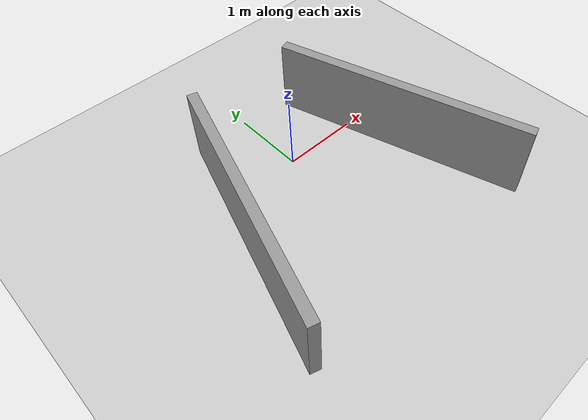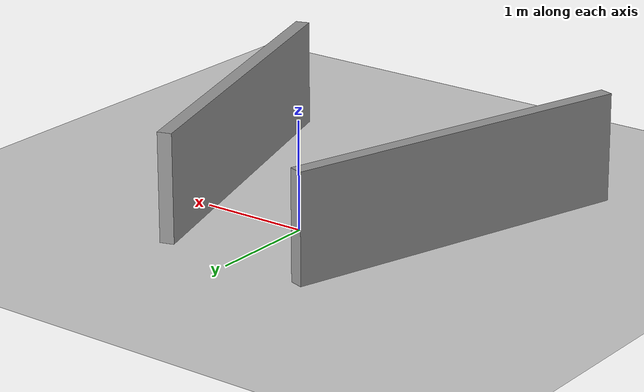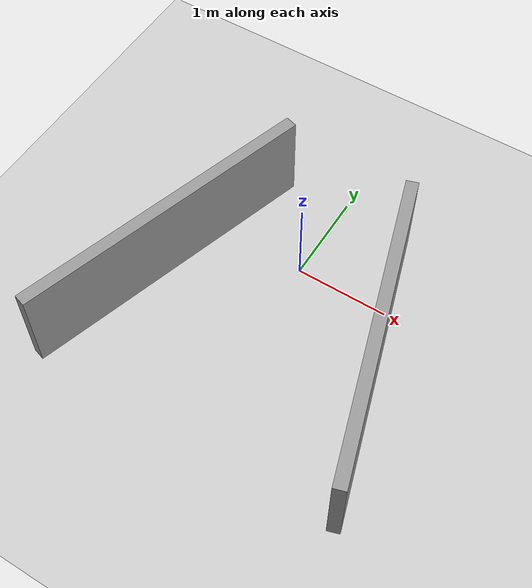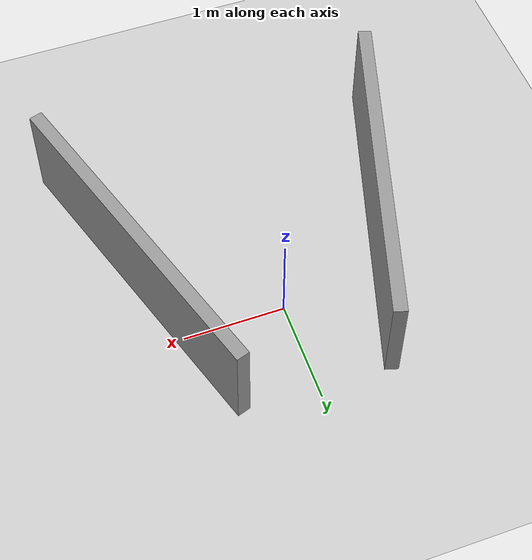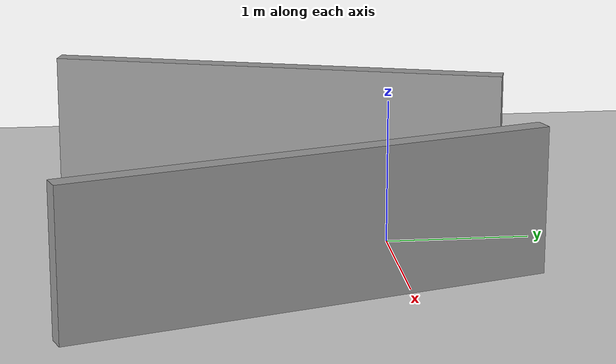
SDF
<sdf version="1.7">
 <world name="default">
  <light name="sun" type="directional">
   <cast_shadows>0</cast_shadows>
   <pose>0 0 10 0 -0 0</pose>
   <diffuse>0.8 0.8 0.8 1</diffuse>
   <specular>0.2 0.2 0.2 1</specular>
   <attenuation>
    <range>1000</range>
    <constant>0.9</constant>
    <linear>0.01</linear>
    <quadratic>0.001</quadratic>
   </attenuation>
   <direction>-0.5 0.1 -0.9</direction>
   <spot><inner_angle>0</inner_angle><outer_angle>0</outer_angle><falloff>0</falloff></spot>
  </light>
  <model name="ground_plane">
   <static>1</static>
   <link name="link">
    <collision name="collision">
     <geometry><plane><normal>0 0 1</normal><size>100 100</size></plane></geometry>
     <surface><friction><ode><mu>100</mu><mu2>50</mu2></ode></friction></surface>
    </collision>
    <visual name="visual">
     <cast_shadows>0</cast_shadows>
     <geometry><plane><normal>0 0 1</normal><size>100 100</size></plane></geometry>
     <material>
      <script><uri>file://media/materials/scripts/gazebo.material</uri><name>Gazebo/Grey</name></script>
     </material>
    </visual>
   </link>
  </model>
  <physics type="ode">
   <real_time_update_rate>1000</real_time_update_rate>
   <max_step_size>0.001</max_step_size>
   <real_time_factor>1</real_time_factor>
   <ode>
    <solver>
     <type>quick</type>
     <iters>150</iters>
     <precon_iters>0</precon_iters>
     <sor>1.4</sor>
     <use_dynamic_moi_rescaling>1</use_dynamic_moi_rescaling>
    </solver>
    <constraints>
     <cfm>1e-05</cfm>
     <erp>0.2</erp>
     <contact_max_correcting_vel>2000</contact_max_correcting_vel>
     <contact_surface_layer>0.01</contact_surface_layer>
    </constraints>
   </ode>
  </physics>
  <gravity>0 0 -9.8</gravity>
  <magnetic_field>6e-06 2.3e-05 -4.2e-05</magnetic_field>
  <atmosphere type="adiabatic"/>
  <scene><ambient>0.4 0.4 0.4 1</ambient><background>0.7 0.7 0.7 1</background><shadows>0</shadows></scene>
  <audio><device>default</device></audio>
  <spherical_coordinates>
   <surface_model>EARTH_WGS84</surface_model>
   <latitude_deg>0</latitude_deg>
   <longitude_deg>0</longitude_deg>
   <elevation>0</elevation>
   <heading_deg>0</heading_deg>
  </spherical_coordinates>
  <model name="unit_box">
   <static>1</static>
   <pose>-1.19247 -0.641899 0.499712 -0.000174 -4e-06 -0.296799</pose>
   <link name="link">
    <inertial>
     <mass>1</mass>
     <inertia>
      <ixx>0.166667</ixx>
      <ixy>0</ixy>
      <ixz>0</ixz>
      <iyy>0.166667</iyy>
      <iyz>0</iyz>
      <izz>0.166667</izz>
     </inertia>
    </inertial>
    <collision name="collision">
     <geometry><box><size>0.131933 3.32978 1</size></box></geometry>
     <surface>
      <friction>
       <torsional><ode><mu>100</mu><mu2>50</mu2><slip1>0.0</slip1><slip2>0.0</slip2></ode></torsional>
       <ode><mu>100</mu><mu2>50</mu2><fdir1>0 0 1</fdir1><slip1>0.0</slip1><slip2>0.0</slip2></ode>
      </friction>
     </surface>
    </collision>
    <visual name="visual">
     <geometry><box><size>0.131933 3.32978 1</size></box></geometry>
     <material>
      <script><name>Gazebo/Grey</name><uri>file://media/materials/scripts/gazebo.material</uri></script>
     </material>
    </visual>
   </link>
  </model>
  <model name="unit_box_clone">
   <static>1</static>
   <pose>1.2176 -0.677264 0.499712 -0.000173 4e-06 0.304691</pose>
   <link name="link">
    <inertial>
     <mass>1</mass>
     <inertia>
      <ixx>0.166667</ixx>
      <ixy>0</ixy>
      <ixz>0</ixz>
      <iyy>0.166667</iyy>
      <iyz>0</iyz>
      <izz>0.166667</izz>
     </inertia>
    </inertial>
    <collision name="collision">
     <geometry><box><size>0.131933 3.32978 1</size></box></geometry>
     <surface>
      <friction>
       <torsional><ode><mu>1.0</mu><mu2>1.0</mu2><slip1>0.0</slip1><slip2>0.0</slip2></ode></torsional>
       <ode><mu>100</mu><mu2>50</mu2><fdir1>0 0 1</fdir1><slip1>0.0</slip1><slip2>0.0</slip2></ode>
      </friction>
     </surface>
    </collision>
    <visual name="visual">
     <geometry><box><size>0.131933 3.32978 1</size></box></geometry>
     <material>
      <script><name>Gazebo/Grey</name><uri>file://media/materials/scripts/gazebo.material</uri></script>
     </material>
    </visual>
   </link>
  </model>
 </world>
</sdf>
